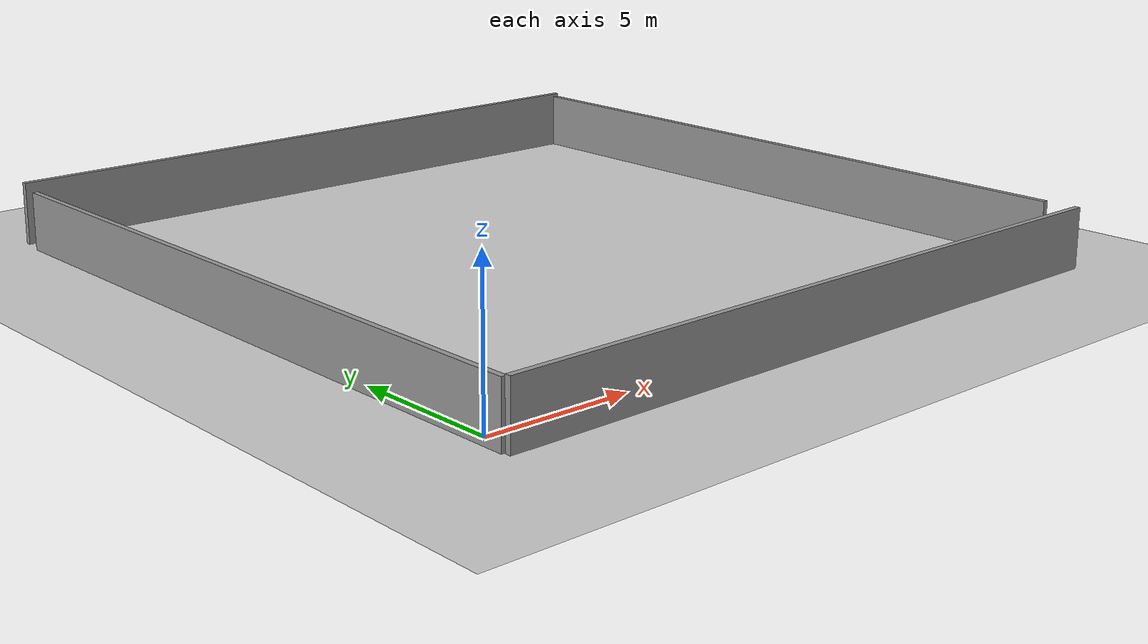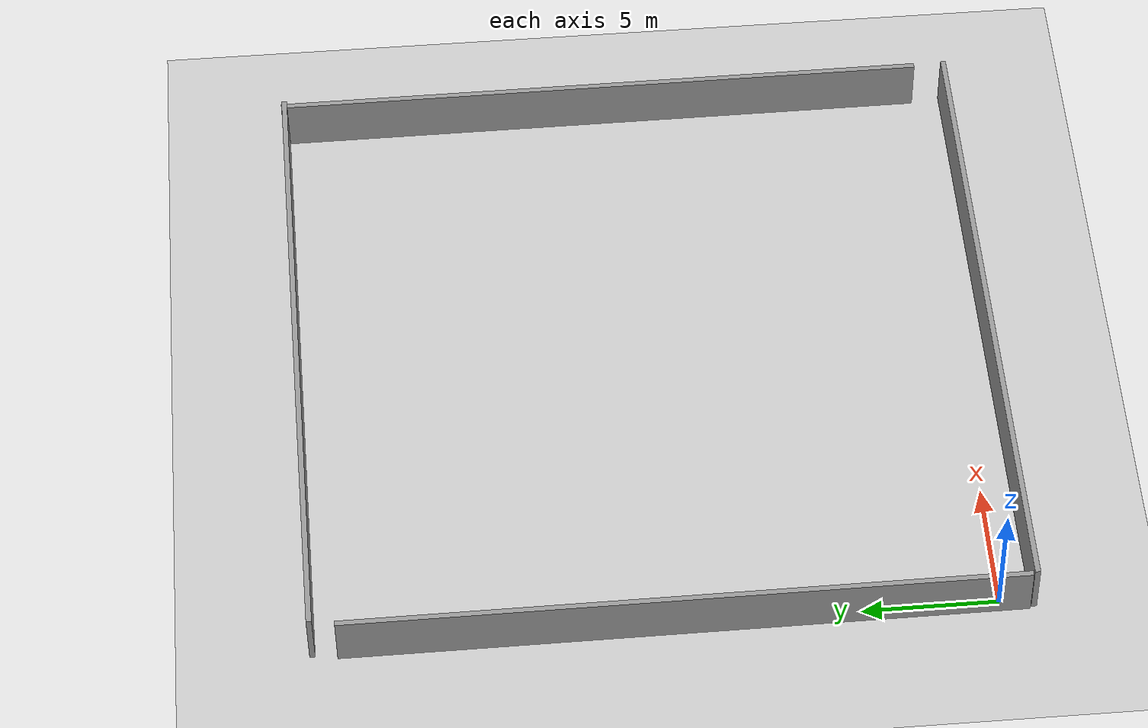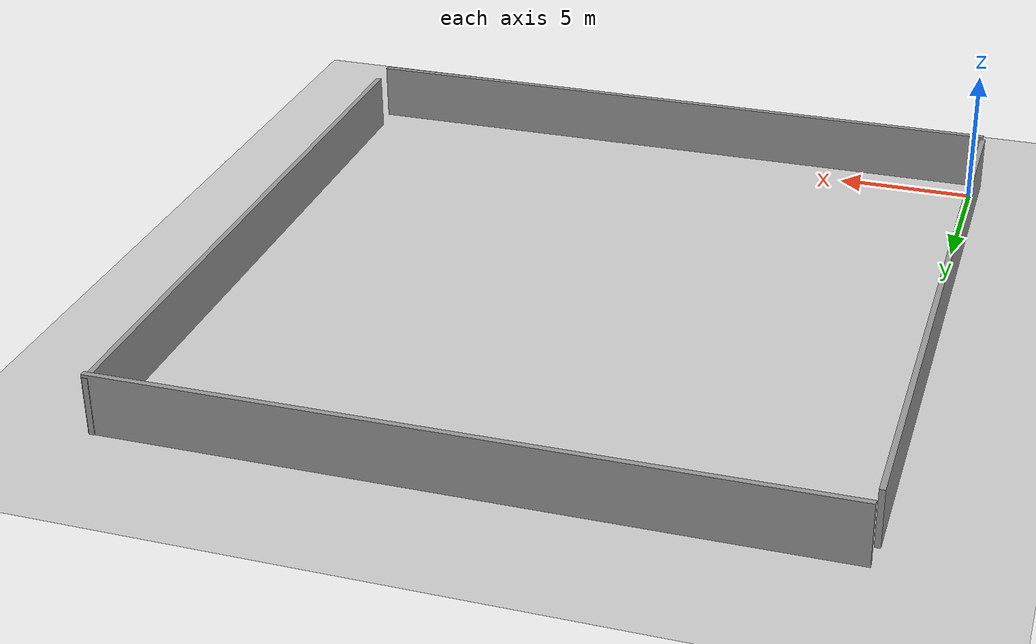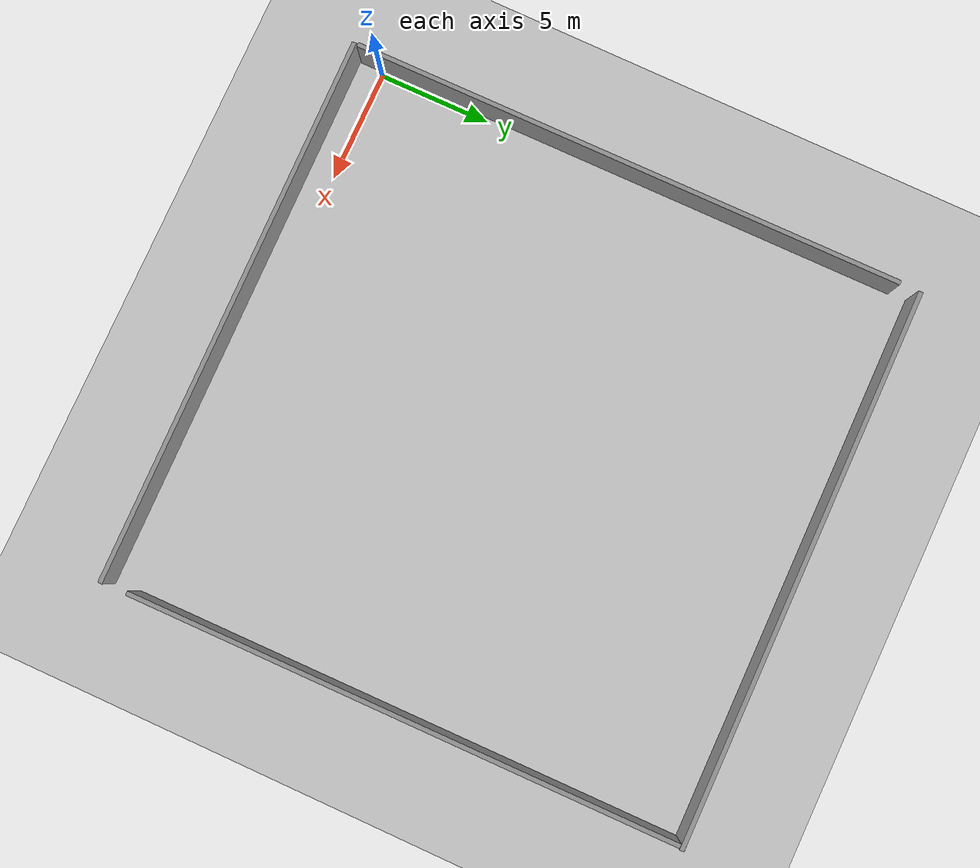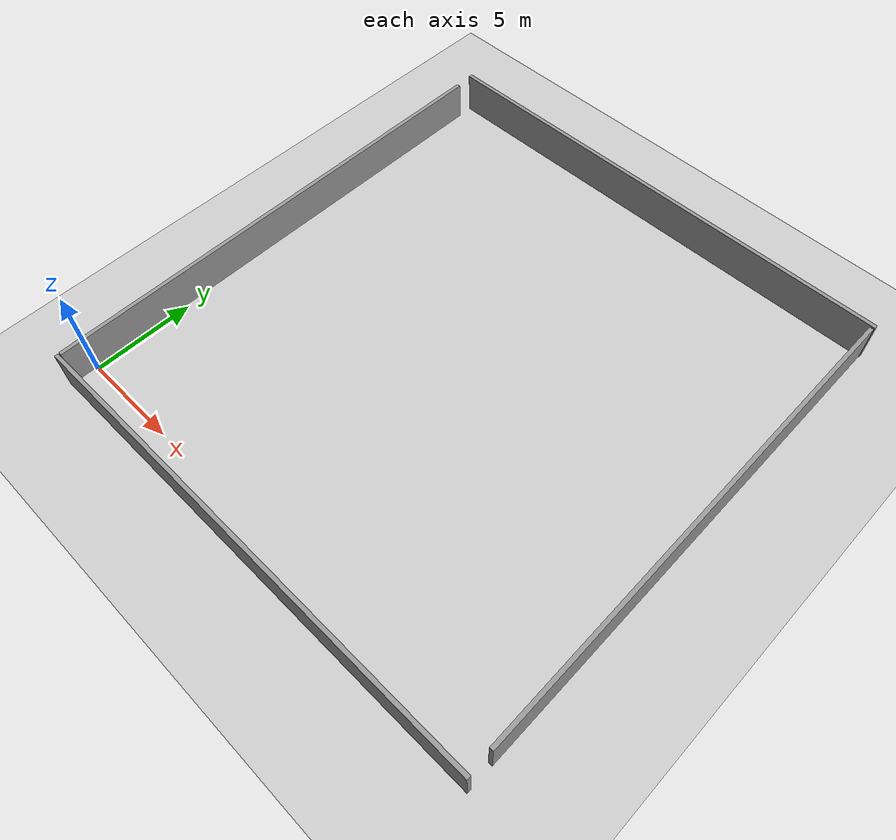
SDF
<sdf version="1.6">
 <world name="default">
  <light name="sun" type="directional">
   <pose>0 0 10 0 -0 0</pose>
   <diffuse>0.8 0.8 0.8 1</diffuse>
   <specular>0.2 0.2 0.2 1</specular>
   <attenuation>
    <range>1000</range>
    <constant>0.9</constant>
    <linear>0.01</linear>
    <quadratic>0.001</quadratic>
   </attenuation>
   <direction>-0.5 0.1 -0.9</direction>
  </light>
  <model name="ground_plane">
   <static>1</static>
   <link name="link">
    <collision name="collision">
     <geometry><plane><normal>0 0 1</normal><size>100 100</size></plane></geometry>
     <surface><friction><ode><mu>100</mu><mu2>50</mu2></ode></friction></surface>
    </collision>
    <visual name="visual">
     <cast_shadows>0</cast_shadows>
     <geometry><plane><normal>0 0 1</normal><size>100 100</size></plane></geometry>
     <material>
      <script><uri>file://media/materials/scripts/gazebo.material</uri><name>Gazebo/Grey</name></script>
     </material>
    </visual>
    <velocity_decay><linear>0</linear><angular>0</angular></velocity_decay>
   </link>
  </model>
  <physics name="default_physics" default="0" type="ode">
   <max_step_size>0.001</max_step_size>
   <real_time_factor>1</real_time_factor>
   <real_time_update_rate>1000</real_time_update_rate>
  </physics>
  <scene><ambient>0.4 0.4 0.4 1</ambient><background>0.7 0.7 0.7 1</background><shadows>1</shadows></scene>
  <spherical_coordinates>
   <surface_model>EARTH_WGS84</surface_model>
   <latitude_deg>0</latitude_deg>
   <longitude_deg>0</longitude_deg>
   <elevation>0</elevation>
   <heading_deg>0</heading_deg>
  </spherical_coordinates>
  <gravity>0 0 -9.8</gravity>
  <magnetic_field>6e-06 2.3e-05 -4.2e-05</magnetic_field>
  <atmosphere type="adiabatic"/>
  <model name="grey_wall_6_0">
   <link name="link">
    <pose>11.2261 0.490097 1.4 0 -0 0</pose>
    <velocity_decay><linear>0</linear><angular>0</angular></velocity_decay>
    <inertial>
     <inertia><ixx>nan</ixx><ixy>0</ixy><ixz>0</ixz><iyy>nan</iyy><iyz>0</iyz><izz>nan</izz></inertia>
     <mass>0</mass>
    </inertial>
    <visual name="visual">
     <cast_shadows>0</cast_shadows>
     <geometry><box><size>24.8883 0.2 2.63649</size></box></geometry>
     <material>
      <script>
       <uri>model://grey_wall/materials/scripts</uri>
       <uri>model://grey_wall/materials/textures</uri>
       <name>vrc/grey_wall</name>
      </script>
      <ambient>1 1 1 1</ambient>
      <diffuse>1 1 1 1</diffuse>
      <specular>0 0 0 1</specular>
      <emissive>0 0 0 1</emissive>
     </material>
    </visual>
    <collision name="collision">
     <geometry><box><size>24.8883 0.2 2.63649</size></box></geometry>
     <surface>
      <friction>
       <ode><mu>1</mu><mu2>1</mu2><fdir1>0 0 0</fdir1><slip1>0</slip1><slip2>0</slip2></ode>
       <torsional>
        <coefficient>1</coefficient>
        <patch_radius>0</patch_radius>
        <surface_radius>0</surface_radius>
        <use_patch_radius>1</use_patch_radius>
        <ode><slip>0</slip></ode>
       </torsional>
      </friction>
      <bounce><restitution_coefficient>0</restitution_coefficient><threshold>1e+06</threshold></bounce>
      <contact>
       <collide_without_contact>0</collide_without_contact>
       <collide_without_contact_bitmask>1</collide_without_contact_bitmask>
       <collide_bitmask>1</collide_bitmask>
       <ode>
        <soft_cfm>0</soft_cfm>
        <soft_erp>0.2</soft_erp>
        <kp>1e+13</kp>
        <kd>1</kd>
        <max_vel>0.01</max_vel>
        <min_depth>0</min_depth>
       </ode>
       <bullet>
        <split_impulse>1</split_impulse>
        <split_impulse_penetration_threshold>-0.01</split_impulse_penetration_threshold>
        <soft_cfm>0</soft_cfm>
        <soft_erp>0.2</soft_erp>
        <kp>1e+13</kp>
        <kd>1</kd>
       </bullet>
      </contact>
     </surface>
    </collision>
   </link>
   <static>1</static>
   <pose>23.4213 -0.574168 -0.647854 0 0 -3.13457</pose>
  </model>
  <model name="grey_wall_6_0_clone">
   <link name="link">
    <pose>11.2261 0.490097 1.4 0 -0 0</pose>
    <velocity_decay><linear>0</linear><angular>0</angular></velocity_decay>
    <inertial>
     <inertia><ixx>nan</ixx><ixy>0</ixy><ixz>0</ixz><iyy>nan</iyy><iyz>0</iyz><izz>nan</izz></inertia>
     <mass>0</mass>
    </inertial>
    <visual name="visual">
     <cast_shadows>0</cast_shadows>
     <geometry><box><size>24.8883 0.2 2.63649</size></box></geometry>
     <material>
      <script>
       <uri>model://grey_wall/materials/scripts</uri>
       <uri>model://grey_wall/materials/textures</uri>
       <name>vrc/grey_wall</name>
      </script>
      <ambient>1 1 1 1</ambient>
      <diffuse>1 1 1 1</diffuse>
      <specular>0 0 0 1</specular>
      <emissive>0 0 0 1</emissive>
     </material>
    </visual>
    <collision name="collision">
     <geometry><box><size>24.8883 0.2 2.63649</size></box></geometry>
     <surface>
      <friction>
       <ode><mu>1</mu><mu2>1</mu2><fdir1>0 0 0</fdir1><slip1>0</slip1><slip2>0</slip2></ode>
       <torsional>
        <coefficient>1</coefficient>
        <patch_radius>0</patch_radius>
        <surface_radius>0</surface_radius>
        <use_patch_radius>1</use_patch_radius>
        <ode><slip>0</slip></ode>
       </torsional>
      </friction>
      <bounce><restitution_coefficient>0</restitution_coefficient><threshold>1e+06</threshold></bounce>
      <contact>
       <collide_without_contact>0</collide_without_contact>
       <collide_without_contact_bitmask>1</collide_without_contact_bitmask>
       <collide_bitmask>1</collide_bitmask>
       <ode>
        <soft_cfm>0</soft_cfm>
        <soft_erp>0.2</soft_erp>
        <kp>1e+13</kp>
        <kd>1</kd>
        <max_vel>0.01</max_vel>
        <min_depth>0</min_depth>
       </ode>
       <bullet>
        <split_impulse>1</split_impulse>
        <split_impulse_penetration_threshold>-0.01</split_impulse_penetration_threshold>
        <soft_cfm>0</soft_cfm>
        <soft_erp>0.2</soft_erp>
        <kp>1e+13</kp>
        <kd>1</kd>
       </bullet>
      </contact>
     </surface>
    </collision>
   </link>
   <static>1</static>
   <pose>0.243608 0.134721 -0.713453 0 -0 1.57597</pose>
  </model>
  <model name="grey_wall_6_0_clone_0">
   <link name="link">
    <pose>11.2261 0.490097 1.4 0 -0 0</pose>
    <velocity_decay><linear>0</linear><angular>0</angular></velocity_decay>
    <inertial>
     <inertia><ixx>nan</ixx><ixy>0</ixy><ixz>0</ixz><iyy>nan</iyy><iyz>0</iyz><izz>nan</izz></inertia>
     <mass>0</mass>
    </inertial>
    <visual name="visual">
     <cast_shadows>0</cast_shadows>
     <geometry><box><size>24.8883 0.2 2.63649</size></box></geometry>
     <material>
      <script>
       <uri>model://grey_wall/materials/scripts</uri>
       <uri>model://grey_wall/materials/textures</uri>
       <name>vrc/grey_wall</name>
      </script>
      <ambient>1 1 1 1</ambient>
      <diffuse>1 1 1 1</diffuse>
      <specular>0 0 0 1</specular>
      <emissive>0 0 0 1</emissive>
     </material>
    </visual>
    <collision name="collision">
     <geometry><box><size>24.8883 0.2 2.63649</size></box></geometry>
     <surface>
      <friction>
       <ode><mu>1</mu><mu2>1</mu2><fdir1>0 0 0</fdir1><slip1>0</slip1><slip2>0</slip2></ode>
       <torsional>
        <coefficient>1</coefficient>
        <patch_radius>0</patch_radius>
        <surface_radius>0</surface_radius>
        <use_patch_radius>1</use_patch_radius>
        <ode><slip>0</slip></ode>
       </torsional>
      </friction>
      <bounce><restitution_coefficient>0</restitution_coefficient><threshold>1e+06</threshold></bounce>
      <contact>
       <collide_without_contact>0</collide_without_contact>
       <collide_without_contact_bitmask>1</collide_without_contact_bitmask>
       <collide_bitmask>1</collide_bitmask>
       <ode>
        <soft_cfm>0</soft_cfm>
        <soft_erp>0.2</soft_erp>
        <kp>1e+13</kp>
        <kd>1</kd>
        <max_vel>0.01</max_vel>
        <min_depth>0</min_depth>
       </ode>
       <bullet>
        <split_impulse>1</split_impulse>
        <split_impulse_penetration_threshold>-0.01</split_impulse_penetration_threshold>
        <soft_cfm>0</soft_cfm>
        <soft_erp>0.2</soft_erp>
        <kp>1e+13</kp>
        <kd>1</kd>
       </bullet>
      </contact>
     </surface>
    </collision>
   </link>
   <static>1</static>
   <pose>23.3321 25.3557 -0.554516 0 0 -3.13457</pose>
  </model>
  <model name="grey_wall_6_0_clone_clone">
   <link name="link">
    <pose>11.2261 0.490097 1.4 0 -0 0</pose>
    <velocity_decay><linear>0</linear><angular>0</angular></velocity_decay>
    <inertial>
     <inertia><ixx>nan</ixx><ixy>0</ixy><ixz>0</ixz><iyy>nan</iyy><iyz>0</iyz><izz>nan</izz></inertia>
     <mass>0</mass>
    </inertial>
    <visual name="visual">
     <cast_shadows>0</cast_shadows>
     <geometry><box><size>24.8883 0.2 2.63649</size></box></geometry>
     <material>
      <script>
       <uri>model://grey_wall/materials/scripts</uri>
       <uri>model://grey_wall/materials/textures</uri>
       <name>vrc/grey_wall</name>
      </script>
      <ambient>1 1 1 1</ambient>
      <diffuse>1 1 1 1</diffuse>
      <specular>0 0 0 1</specular>
      <emissive>0 0 0 1</emissive>
     </material>
    </visual>
    <collision name="collision">
     <geometry><box><size>24.8883 0.2 2.63649</size></box></geometry>
     <surface>
      <friction>
       <ode><mu>1</mu><mu2>1</mu2><fdir1>0 0 0</fdir1><slip1>0</slip1><slip2>0</slip2></ode>
       <torsional>
        <coefficient>1</coefficient>
        <patch_radius>0</patch_radius>
        <surface_radius>0</surface_radius>
        <use_patch_radius>1</use_patch_radius>
        <ode><slip>0</slip></ode>
       </torsional>
      </friction>
      <bounce><restitution_coefficient>0</restitution_coefficient><threshold>1e+06</threshold></bounce>
      <contact>
       <collide_without_contact>0</collide_without_contact>
       <collide_without_contact_bitmask>1</collide_without_contact_bitmask>
       <collide_bitmask>1</collide_bitmask>
       <ode>
        <soft_cfm>0</soft_cfm>
        <soft_erp>0.2</soft_erp>
        <kp>1e+13</kp>
        <kd>1</kd>
        <max_vel>0.01</max_vel>
        <min_depth>0</min_depth>
       </ode>
       <bullet>
        <split_impulse>1</split_impulse>
        <split_impulse_penetration_threshold>-0.01</split_impulse_penetration_threshold>
        <soft_cfm>0</soft_cfm>
        <soft_erp>0.2</soft_erp>
        <kp>1e+13</kp>
        <kd>1</kd>
       </bullet>
      </contact>
     </surface>
    </collision>
   </link>
   <static>1</static>
   <pose>25.0346 1.33079 -0.660705 0 -0 1.57597</pose>
  </model>
 </world>
</sdf>
